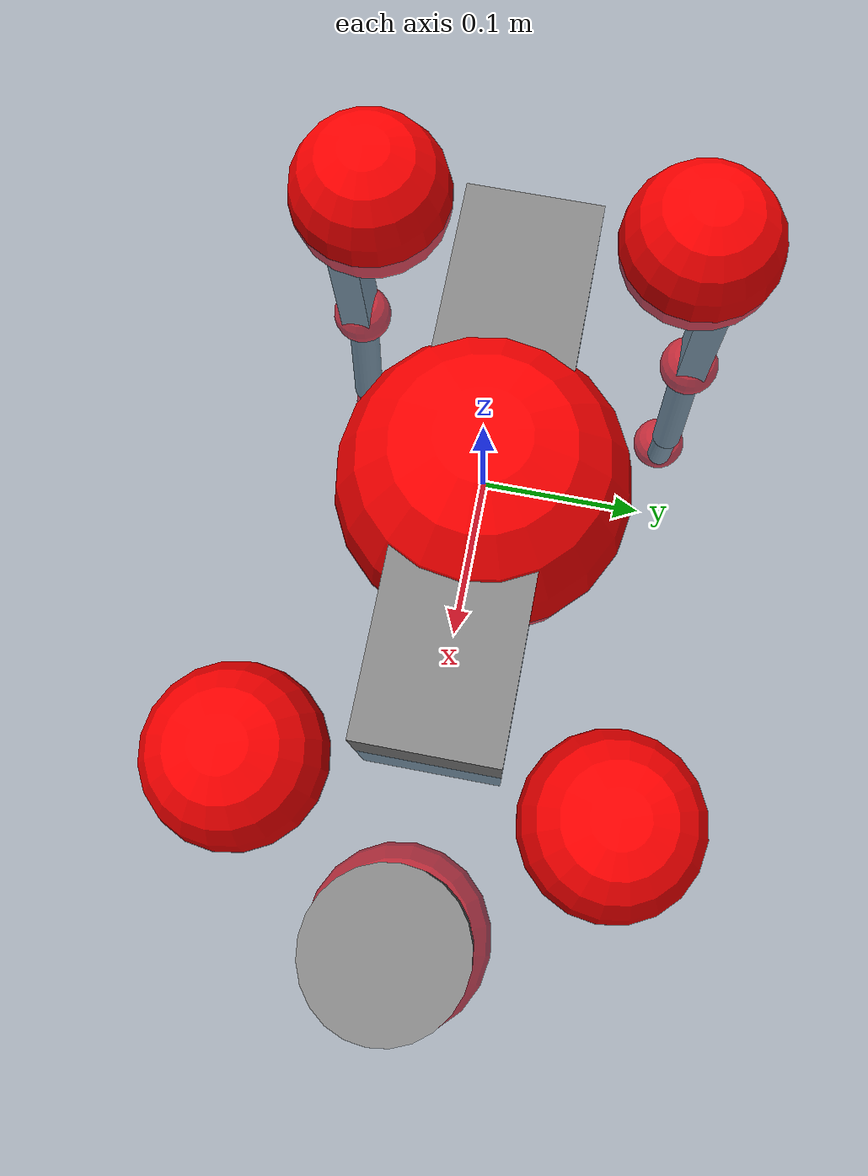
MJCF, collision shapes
<mujoco model="go2">
  <compiler angle="radian" assetdir="assets" balanceinertia="true" inertiafromgeom="false"/>

  <option timestep="0.005" density="1.2" viscosity="2e-05"/>

  <size nkey="1"/>

  <visual>
    <quality shadowsize="8192"/>
    <map shadowclip="0.5"/>
  </visual>

  <default>
    <default class="/">
      <geom contype="0" conaffinity="0" group="1" solref="-1000 -80"/>
      <site size="0.01 0.005 0.005" group="5"/>
      <general forcelimited="true" biastype="affine" gainprm="20" biasprm="0 -20 -0.5"/>
      <default class="go2">
        <joint armature="0.01" damping="0.01" frictionloss="0.2"/>
        <geom condim="1" margin="0.001"/>
        <default class="visual">
          <geom type="mesh" group="2"/>
        </default>
        <default class="collision">
          <geom group="3"/>
          <default class="foot">
            <geom size="0.022 0 0" condim="6" priority="1" friction="0.8 0.02 0.01" solimp="0.015 1 0.022"/>
          </default>
        </default>
        <default class="reward_collision_sphere">
          <geom group="5" rgba="1 0 0 1"/>
        </default>
      </default>
    </default>
  </default>

  <asset>
    <texture type="skybox" colorspace="auto" name="//unnamed_texture_0" builtin="gradient" rgb1="0.95 0.95 0.95" rgb2="0.95 0.95 0.95" width="100" height="600"/>
    <texture type="2d" colorspace="auto" name="texplane" builtin="checker" rgb1="0.345 0.575 0.748" rgb2="0.345 0.575 0.748" markrgb="1 1 1" width="512" height="512"/>
    <material name="MatPlane" class="/" texture="texplane" texuniform="true" texrepeat="2 2" specular="0.9"/>
    <material name="metal" class="/" rgba="0.9 0.95 0.95 1"/>
    <material name="black" class="/" rgba="0 0 0 1"/>
    <material name="white" class="/"/>
    <material name="gray" class="/" rgba="0.671705 0.692426 0.77427 1"/>
    <mesh name="base_0" class="/" file="base_0.obj"/>
    <mesh name="base_1" class="/" file="base_1.obj"/>
    <mesh name="base_2" class="/" file="base_2.obj"/>
    <mesh name="base_3" class="/" file="base_3.obj"/>
    <mesh name="base_4" class="/" file="base_4.obj"/>
    <mesh name="hip_0" class="/" file="hip_0.obj"/>
    <mesh name="hip_1" class="/" file="hip_1.obj"/>
    <mesh name="thigh_0" class="/" file="thigh_0.obj"/>
    <mesh name="thigh_1" class="/" file="thigh_1.obj"/>
    <mesh name="thigh_mirror_0" class="/" file="thigh_mirror_0.obj"/>
    <mesh name="thigh_mirror_1" class="/" file="thigh_mirror_1.obj"/>
    <mesh name="calf_0" class="/" file="calf_0.obj"/>
    <mesh name="calf_1" class="/" file="calf_1.obj"/>
    <mesh name="calf_mirror_0" class="/" file="calf_mirror_0.obj"/>
    <mesh name="calf_mirror_1" class="/" file="calf_mirror_1.obj"/>
    <mesh name="foot" class="/" file="foot.obj"/>
  </asset>

  <worldbody>
    <geom name="floor" class="/" size="100 100 0.125" type="plane" group="0" material="MatPlane"/>
    <light name="toplight_shadow" class="/" pos="0 0 5" dir="0.0990148 0.0990148 -0.990148" type="directional" ambient="0.04 0.04 0.04" diffuse="0.55 0.55 0.55" specular="0.12 0.12 0.12"/>
    <light name="toplight_fill" class="/" pos="0 0 5" dir="0.0990148 0.0990148 -0.990148" type="directional" castshadow="false" ambient="0.04 0.04 0.04" diffuse="0.3 0.3 0.3" specular="0.08 0.08 0.08"/>
    <body name="trunk" childclass="go2" pos="0.000294908 -0.000120754 -0.00235979" quat="0.999999 0.000347109 -0.000633535 0.000782103">
      <inertial pos="0.0215523 0.00176848 -0.00478892" quat="0.00916946 0.713389 -0.00450388 0.700693" mass="6.37141" diaginertia="0.120769 0.0973318 0.0141182"/>
      <joint name="//unnamed_joint_0" type="free" armature="0" damping="0" frictionloss="0"/>
      <geom name="//unnamed_geom_1" class="visual" material="black" mesh="base_0"/>
      <geom name="//unnamed_geom_2" class="visual" material="black" mesh="base_1"/>
      <geom name="//unnamed_geom_3" class="visual" material="black" mesh="base_2"/>
      <geom name="//unnamed_geom_4" class="visual" material="white" mesh="base_3"/>
      <geom name="//unnamed_geom_5" class="visual" material="gray" mesh="base_4"/>
      <geom name="trunk_1" class="collision" size="0.181866 0.0452006 0.0551109" type="box"/>
      <geom name="trunk_2" class="collision" size="0.0483429 0.0435086" pos="0.290479 0 0.00889993" type="cylinder"/>
      <geom name="trunk_3" class="collision" size="0.0454423" pos="0.298633 0 -0.0533996"/>
      <geom name="//unnamed_geom_9" class="reward_collision_sphere" size="0.0966858"/>
      <geom name="//unnamed_geom_10" class="reward_collision_sphere" size="0.0580115" pos="0.285383 0 -0.0400497"/>
      <site name="imu" pos="-0.0278564 -0.000220759 0.0315415" size="0.00966858"/>
      <camera name="track" pos="0 -1.98271 0" quat="0.707107 0.707107 0 0" mode="trackcom"/>
      <camera name="ego_camera" pos="0.317998 0 0.0400497" quat="-0.5 -0.5 0.5 0.5"/>
      <body name="FL_hip" pos="0.196569 0.0459171 0.000866761" quat="1 1.56301e-05 -0.000121637 9.48138e-05">
        <inertial pos="-0.0072345 0.00184909 -0.00245214" quat="0.503085 0.48971 0.507242 0.499795" mass="0.614689" diaginertia="0.0009852 0.000578487 0.000268142"/>
        <joint name="FL_hip_joint" pos="0 0 0" axis="0.999978 -0.00219036 0.00619535" range="-1.04976 1.0429" armature="0.00968685" damping="0" frictionloss="0.189918"/>
        <geom name="//unnamed_geom_11" class="visual" material="metal" mesh="hip_0"/>
        <geom name="//unnamed_geom_12" class="visual" material="gray" mesh="hip_1"/>
        <geom name="//unnamed_geom_13" class="collision" size="0.0444755 0.0193372" pos="0 0.0793085 0" quat="0.707107 0.707107 0 0" type="cylinder"/>
        <geom name="//unnamed_geom_14" class="reward_collision_sphere" size="0.0580115" pos="0 0.0693949 0"/>
        <body name="FL_thigh" pos="-0.00235837 0.093886 0.00234805" quat="1 -9.22667e-05 -2.63691e-05 4.67621e-05">
          <inertial pos="-0.00499714 -0.0221231 -0.0293913" quat="0.830256 0.0894877 -0.0196755 0.549799" mass="1.00935" diaginertia="0.00636006 0.0054736 0.000471459"/>
          <joint name="FL_thigh_joint" pos="0 0 0" axis="-0.00181101 0.999985 0.00513181" stiffness="0.00446393" range="-1.56444 3.49724" armature="0.00928556" damping="0.0116814" frictionloss="0.193741"/>
          <geom name="//unnamed_geom_15" class="visual" material="metal" mesh="thigh_0"/>
          <geom name="//unnamed_geom_16" class="visual" material="gray" mesh="thigh_1"/>
          <geom name="//unnamed_geom_17" class="collision" size="0.10297 0.011844 0.0164366" pos="0 0 -0.0947843" quat="0.707107 0 0.707107 0" type="box"/>
          <body name="FL_calf" pos="-0.000510086 -0.000409895 -0.189644" quat="1 -1.30313e-05 4.68943e-06 1.83799e-05">
            <inertial pos="0.00394243 -0.00269387 -0.124796" quat="0.710688 -7.53815e-05 -0.00505634 0.703489" mass="0.216923" diaginertia="0.00159384 0.00140755 2.96813e-05"/>
            <joint name="FL_calf_joint" pos="0 0 0" axis="0.00125807 0.999996 0.00247973" stiffness="0.00525866" range="-2.77436 -0.835523" armature="0.00991794" damping="0.010247" frictionloss="0.216955"/>
            <geom name="//unnamed_geom_18" class="visual" material="gray" mesh="calf_0"/>
            <geom name="//unnamed_geom_19" class="visual" material="black" mesh="calf_1"/>
            <geom name="FL_calf0" class="collision" size="0.0116023 0.0580115" pos="0.00815379 0 -0.0533996" quat="0.994493 0 -0.104807 0" type="cylinder"/>
            <geom name="//unnamed_geom_21" class="collision" size="0.0106354 0.0314229" pos="0.0203845 0 -0.131719" quat="0.999688 0 0.0249974 0" type="cylinder"/>
            <geom name="//unnamed_geom_22" class="visual" pos="0 0 -0.189569" quat="1 0 0 0" material="black" mesh="foot"/>
            <geom name="FL_foot" class="foot" size="0.0167614" pos="-0.00203845 0 -0.189569"/>
            <geom name="//unnamed_geom_24" class="reward_collision_sphere" size="0.0241714"/>
            <geom name="//unnamed_geom_25" class="reward_collision_sphere" size="0.0241714" pos="-0.00203845 0 -0.189569"/>
            <site name="FL_foot" class="foot" pos="-0.00203845 0 -0.189569" size="0.00966858"/>
          </body>
        </body>
      </body>
      <body name="FR_hip" pos="0.197862 -0.0464887 8.92321e-05" quat="0.999999 0.000157 -5.63153e-05 0.00133358">
        <inertial pos="-0.00440428 -0.0020025 -0.000164352" quat="0.50304 0.496785 0.50552 0.494575" mass="0.639201" diaginertia="0.000981993 0.000579272 0.000271957"/>
        <joint name="FR_hip_joint" pos="0 0 0" axis="1 -9.03237e-05 -0.00071804" range="-1.09662 1.05543" armature="0.00930221" damping="0.00610674" frictionloss="0.196958"/>
        <geom name="//unnamed_geom_26" class="visual" pos="0 8.83031e-10 3.7875e-08" quat="4.63268e-05 1 0 0" material="metal" mesh="hip_0"/>
        <geom name="//unnamed_geom_27" class="visual" pos="0 1.4315e-09 -9.36794e-08" quat="4.63268e-05 1 0 0" material="gray" mesh="hip_1"/>
        <geom name="//unnamed_geom_28" class="collision" size="0.0444755 0.0193372" pos="0 -0.0793085 0" quat="0.707107 0.707107 0 0" type="cylinder"/>
        <geom name="//unnamed_geom_29" class="reward_collision_sphere" size="0.0580115" pos="0 -0.0693949 0"/>
        <body name="FR_thigh" pos="0.000137617 -0.0949883 0.00230518" quat="1 0.000152041 9.85003e-05 0.000106987">
          <inertial pos="-0.00294342 0.0222558 -0.0278532" quat="0.549208 -0.0211734 0.0885061 0.830716" mass="1.05682" diaginertia="0.00656446 0.00549868 0.00048609"/>
          <joint name="FR_thigh_joint" pos="0 0 0" axis="-0.00317578 -0.999993 -0.0017669" stiffness="0.00782787" range="-3.49357 1.57028" armature="0.0100849" damping="0.00403517" frictionloss="0.181189"/>
          <geom name="//unnamed_geom_30" class="visual" material="metal" mesh="thigh_mirror_0"/>
          <geom name="//unnamed_geom_31" class="visual" material="gray" mesh="thigh_mirror_1"/>
          <geom name="//unnamed_geom_32" class="collision" size="0.10297 0.011844 0.0164366" pos="0 0 -0.0947843" quat="0.707107 0 0.707107 0" type="box"/>
          <body name="FR_calf" pos="-0.00262458 -0.000317434 -0.187994" quat="1 -3.0817e-05 -6.48297e-06 0.000186905">
            <inertial pos="0.00720995 -0.00125723 -0.124637" quat="0.711563 -0.000623975 -0.00111411 0.702621" mass="0.212614" diaginertia="0.00158676 0.00139621 2.88077e-05"/>
            <joint name="FR_calf_joint" pos="0 0 0" axis="0.00031454 -1 -0.000152852" stiffness="0.00405088" range="0.838871 2.71236" armature="0.00967796" damping="0.000857356" frictionloss="0.198932"/>
            <geom name="//unnamed_geom_33" class="visual" material="gray" mesh="calf_mirror_0"/>
            <geom name="//unnamed_geom_34" class="visual" material="black" mesh="calf_mirror_1"/>
            <geom name="FR_calf0" class="collision" size="0.0125692 0.0580115" pos="0.0101922 0 -0.0533996" quat="0.995004 0 -0.0998334 0" type="cylinder"/>
            <geom name="//unnamed_geom_36" class="collision" size="0.0106354 0.0314229" pos="0.0203845 0 -0.131719" quat="0.999688 0 0.0249974 0" type="cylinder"/>
            <geom name="//unnamed_geom_37" class="visual" pos="0 0 -0.189569" quat="1 0 0 0" material="black" mesh="foot"/>
            <geom name="FR_foot" class="foot" size="0.0212503" pos="-0.00203845 0 -0.189569"/>
            <geom name="//unnamed_geom_39" class="reward_collision_sphere" size="0.0241714"/>
            <geom name="//unnamed_geom_40" class="reward_collision_sphere" size="0.0241714" pos="-0.00203845 0 -0.189569"/>
            <site name="FR_foot" class="foot" pos="-0.00203845 0 -0.189569" size="0.00966858"/>
          </body>
        </body>
      </body>
      <body name="RL_hip" pos="-0.196774 0.0456336 0.0013291" quat="1 2.28598e-05 -2.21608e-05 8.92461e-06">
        <inertial pos="0.00632024 0.000533781 -0.00222732" quat="0.504143 0.495241 0.497943 0.502623" mass="0.609977" diaginertia="0.000980524 0.000564515 0.00026437"/>
        <joint name="RL_hip_joint" pos="0 0 0" axis="-0.999886 -0.0136512 0.00648694" stiffness="0.000283937" range="-1.08567 1.08561" armature="0.0104877" damping="0.0127155" frictionloss="0.191294"/>
        <geom name="//unnamed_geom_41" class="visual" pos="-1.1258e-09 0 -2.20683e-07" quat="4.63268e-05 0 1 0" material="metal" mesh="hip_0"/>
        <geom name="//unnamed_geom_42" class="visual" pos="-1.82506e-09 0 -1.95714e-07" quat="4.63268e-05 0 1 0" material="gray" mesh="hip_1"/>
        <geom name="//unnamed_geom_43" class="collision" size="0.0444755 0.0193372" pos="0 0.0793085 0" quat="0.707107 0.707107 0 0" type="cylinder"/>
        <geom name="//unnamed_geom_44" class="reward_collision_sphere" size="0.0580115" pos="0 0.0693949 0"/>
        <body name="RL_thigh" pos="0.000717198 0.0926293 0.0009275" quat="1 -0.000242331 3.00285e-05 0.000395607">
          <inertial pos="-0.0012984 -0.0227731 -0.0315812" quat="0.829552 0.0847565 -0.0199698 0.551599" mass="1.06895" diaginertia="0.00692973 0.00577733 0.00051005"/>
          <joint name="RL_thigh_joint" pos="0 0 0" axis="-0.00868552 0.999816 -0.0171057" stiffness="0.00189303" range="-0.530863 4.5434" armature="0.00987298" damping="0.00189581" frictionloss="0.186367"/>
          <geom name="//unnamed_geom_45" class="visual" material="metal" mesh="thigh_0"/>
          <geom name="//unnamed_geom_46" class="visual" material="gray" mesh="thigh_1"/>
          <geom name="//unnamed_geom_47" class="collision" size="0.10297 0.011844 0.0164366" pos="0 0 -0.0947843" quat="0.707107 0 0.707107 0" type="box"/>
          <body name="RL_calf" pos="-0.00087372 -0.00152153 -0.1911" quat="1 0.000152059 0.00029873 0.000403222">
            <inertial pos="0.00408169 0.000451253 -0.128203" quat="0.704104 0.00364199 -0.00154804 0.710085" mass="0.217038" diaginertia="0.0016259 0.00139539 2.90705e-05"/>
            <joint name="RL_calf_joint" pos="0 0 0" axis="-0.0020964 0.999956 0.00912103" stiffness="0.00300889" range="-2.72098 -0.886677" armature="0.0106613" damping="0" frictionloss="0.19147"/>
            <geom name="//unnamed_geom_48" class="visual" material="gray" mesh="calf_0"/>
            <geom name="//unnamed_geom_49" class="visual" material="black" mesh="calf_1"/>
            <geom name="RL_calf0" class="collision" size="0.0125692 0.0580115" pos="0.0101922 0 -0.0533996" quat="0.995004 0 -0.0998334 0" type="cylinder"/>
            <geom name="//unnamed_geom_51" class="collision" size="0.0106354 0.0314229" pos="0.0203845 0 -0.131719" quat="0.999688 0 0.0249974 0" type="cylinder"/>
            <geom name="//unnamed_geom_52" class="visual" pos="0 0 -0.189569" quat="1 0 0 0" material="black" mesh="foot"/>
            <geom name="RL_foot" class="foot" size="0.0191053" pos="-0.00203845 0 -0.189569"/>
            <geom name="//unnamed_geom_54" class="reward_collision_sphere" size="0.0241714"/>
            <geom name="//unnamed_geom_55" class="reward_collision_sphere" size="0.0241714" pos="-0.00203845 0 -0.189569"/>
            <site name="RL_foot" class="foot" pos="-0.00203845 0 -0.189569" size="0.00966858"/>
          </body>
        </body>
      </body>
      <body name="RR_hip" pos="-0.194657 -0.046847 6.28131e-05" quat="1 5.04891e-05 -7.69035e-05 -4.34235e-05">
        <inertial pos="0.00413285 -0.00201458 0.000477152" quat="0.491144 0.502906 0.500499 0.505334" mass="0.611091" diaginertia="0.00102865 0.00058639 0.000274708"/>
        <joint name="RR_hip_joint" pos="0 0 0" axis="-0.999917 0.0119422 -0.00473369" stiffness="4.55705e-06" range="-1.03333 1.04741" armature="0.00966562" damping="0.00655186" frictionloss="0.217337"/>
        <geom name="//unnamed_geom_56" class="visual" pos="1.12483e-09 8.83031e-10 -2.58558e-07" quat="2.14617e-09 4.63268e-05 4.63268e-05 -1" material="metal" mesh="hip_0"/>
        <geom name="//unnamed_geom_57" class="visual" pos="1.82744e-09 1.4315e-09 -1.02035e-07" quat="2.14617e-09 4.63268e-05 4.63268e-05 -1" material="gray" mesh="hip_1"/>
        <geom name="//unnamed_geom_58" class="collision" size="0.0444755 0.0193372" pos="0 -0.0793085 0" quat="0.707107 0.707107 0 0" type="cylinder"/>
        <geom name="//unnamed_geom_59" class="reward_collision_sphere" size="0.0580115" pos="0 -0.0693949 0"/>
        <body name="RR_thigh" pos="0.000950635 -0.0949558 -0.00188172" quat="1 0.000181287 -0.000122458 -0.000118786">
          <inertial pos="-0.00239911 0.0230402 -0.0310685" quat="0.552711 -0.0215174 0.0835853 0.828892" mass="1.0222" diaginertia="0.00676976 0.00568789 0.000492539"/>
          <joint name="RR_thigh_joint" pos="0 0 0" axis="-0.00178889 -0.999995 -0.00279197" stiffness="0.00207818" range="-4.53756 0.501478" armature="0.00957547" damping="0.0176696" frictionloss="0.201907"/>
          <geom name="//unnamed_geom_60" class="visual" material="metal" mesh="thigh_mirror_0"/>
          <geom name="//unnamed_geom_61" class="visual" material="gray" mesh="thigh_mirror_1"/>
          <geom name="//unnamed_geom_62" class="collision" size="0.10297 0.011844 0.0164366" pos="0 0 -0.0947843" quat="0.707107 0 0.707107 0" type="box"/>
          <body name="RR_calf" pos="-0.00145148 0.00103009 -0.191662" quat="0.999999 0.000172346 0.000272962 0.00115328">
            <inertial pos="0.00530125 0.000360999 -0.125566" quat="0.696817 -0.00775621 -0.00104116 0.717206" mass="0.219487" diaginertia="0.00164247 0.00139665 2.89121e-05"/>
            <joint name="RR_calf_joint" pos="0 0 0" axis="-0.0145216 -0.999891 0.00262268" range="0.8729 2.74315" armature="0.00955481" damping="0.0040379" frictionloss="0.202471"/>
            <geom name="//unnamed_geom_63" class="visual" material="gray" mesh="calf_mirror_0"/>
            <geom name="//unnamed_geom_64" class="visual" material="black" mesh="calf_mirror_1"/>
            <geom name="RR_calf0" class="collision" size="0.0125692 0.0580115" pos="0.0101922 0 -0.0533996" quat="0.995004 0 -0.0998334 0" type="cylinder"/>
            <geom name="//unnamed_geom_66" class="collision" size="0.0106354 0.0314229" pos="0.0203845 0 -0.131719" quat="0.999688 0 0.0249974 0" type="cylinder"/>
            <geom name="//unnamed_geom_67" class="visual" pos="0 0 -0.189569" quat="1 0 0 0" material="black" mesh="foot"/>
            <geom name="RR_foot" class="foot" size="0.0238818" pos="-0.00203845 0 -0.189569"/>
            <geom name="//unnamed_geom_69" class="reward_collision_sphere" size="0.0241714"/>
            <geom name="//unnamed_geom_70" class="reward_collision_sphere" size="0.0241714" pos="-0.00203845 0 -0.189569"/>
            <site name="RR_foot" class="foot" pos="-0.00203845 0 -0.189569" size="0.00966858"/>
          </body>
        </body>
      </body>
    </body>
  </worldbody>

  <contact>
    <pair class="/" geom1="floor" geom2="FL_foot" name="//unnamed_contact_0"/>
    <pair class="/" geom1="floor" geom2="FR_foot" name="//unnamed_contact_1"/>
    <pair class="/" geom1="floor" geom2="RL_foot" name="//unnamed_contact_2"/>
    <pair class="/" geom1="floor" geom2="RR_foot" name="//unnamed_contact_3"/>
  </contact>

  <actuator>
    <general name="FL_hip" class="/" joint="FL_hip_joint" forcerange="-22.9347 22.9347" gainprm="19.1449" biasprm="0 -19.1449 -0.497504"/>
    <general name="FL_thigh" class="/" joint="FL_thigh_joint" forcerange="-22.8244 22.8244" gainprm="19.1449" biasprm="0 -19.1449 -0.497504"/>
    <general name="FL_calf" class="/" joint="FL_calf_joint" forcerange="-43.667 43.667" gainprm="19.1449" biasprm="0 -19.1449 -0.497504"/>
    <general name="FR_hip" class="/" joint="FR_hip_joint" forcerange="-22.9641 22.9641" gainprm="19.1449" biasprm="0 -19.1449 -0.497504"/>
    <general name="FR_thigh" class="/" joint="FR_thigh_joint" forcerange="-22.6911 22.6911" gainprm="19.1449" biasprm="0 -19.1449 -0.497504"/>
    <general name="FR_calf" class="/" joint="FR_calf_joint" forcerange="-44.2842 44.2842" gainprm="19.1449" biasprm="0 -19.1449 -0.497504"/>
    <general name="RL_hip" class="/" joint="RL_hip_joint" forcerange="-23.0872 23.0872" gainprm="19.1449" biasprm="0 -19.1449 -0.497504"/>
    <general name="RL_thigh" class="/" joint="RL_thigh_joint" forcerange="-20.9685 20.9685" gainprm="19.1449" biasprm="0 -19.1449 -0.497504"/>
    <general name="RL_calf" class="/" joint="RL_calf_joint" forcerange="-47.1813 47.1813" gainprm="19.1449" biasprm="0 -19.1449 -0.497504"/>
    <general name="RR_hip" class="/" joint="RR_hip_joint" forcerange="-22.9351 22.9351" gainprm="19.1449" biasprm="0 -19.1449 -0.497504"/>
    <general name="RR_thigh" class="/" joint="RR_thigh_joint" forcerange="-23.7681 23.7681" gainprm="19.1449" biasprm="0 -19.1449 -0.497504"/>
    <general name="RR_calf" class="/" joint="RR_calf_joint" forcerange="-44.3989 44.3989" gainprm="19.1449" biasprm="0 -19.1449 -0.497504"/>
  </actuator>

  <sensor>
    <gyro site="imu" name="imu_angular_velocity"/>
    <velocimeter site="imu" name="imu_linear_velocity"/>
    <framelinvel objtype="site" objname="FL_foot" name="FL_foot_global_linear_velocity"/>
    <framelinvel objtype="site" objname="FR_foot" name="FR_foot_global_linear_velocity"/>
    <framelinvel objtype="site" objname="RL_foot" name="RL_foot_global_linear_velocity"/>
    <framelinvel objtype="site" objname="RR_foot" name="RR_foot_global_linear_velocity"/>
  </sensor>

  <keyframe>
    <key name="home" qpos="0 0 0.325 1 0 0 0 0.1 0.8 -1.5 -0.1 -0.8 1.5 -0.1 0.8 -1.5 0.1 -0.8 1.5"/>
  </keyframe>
</mujoco>
